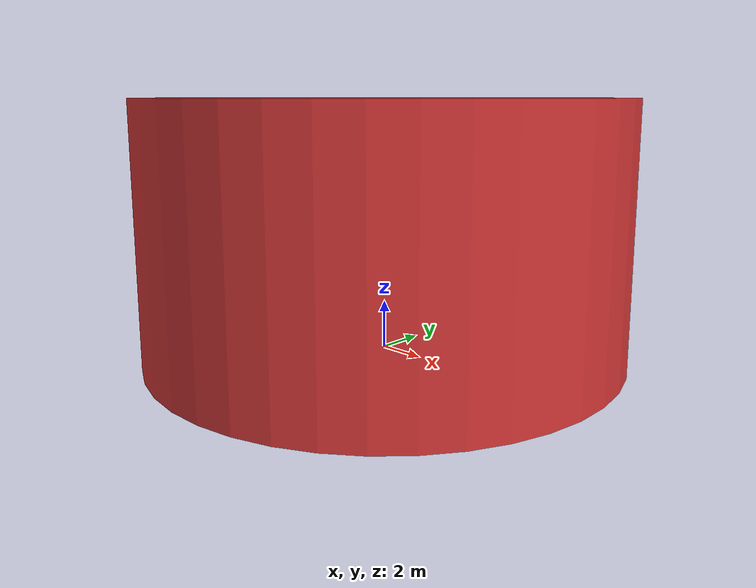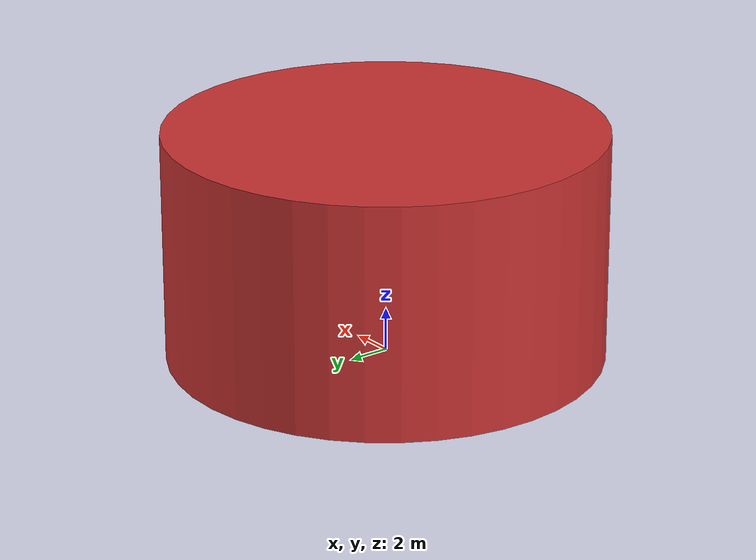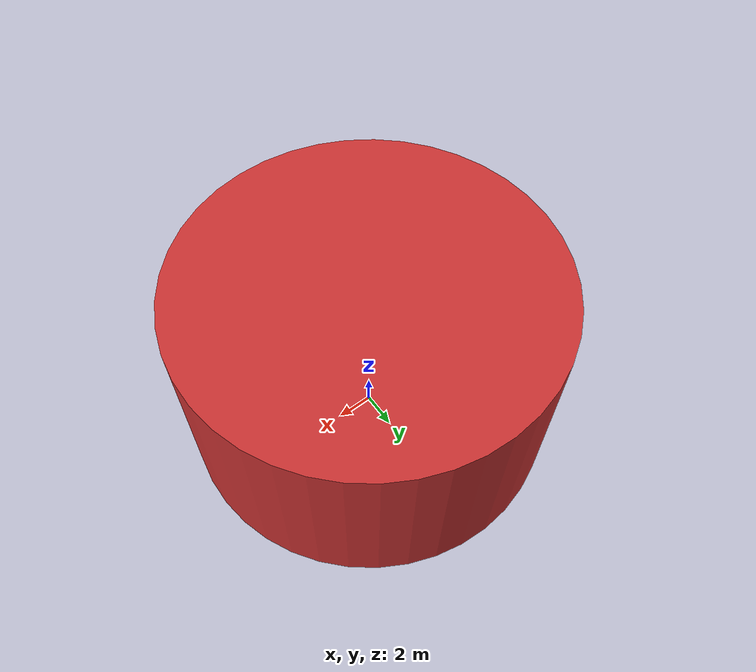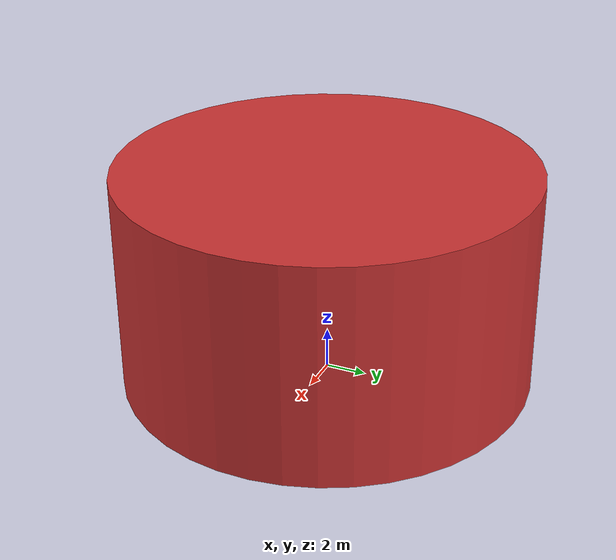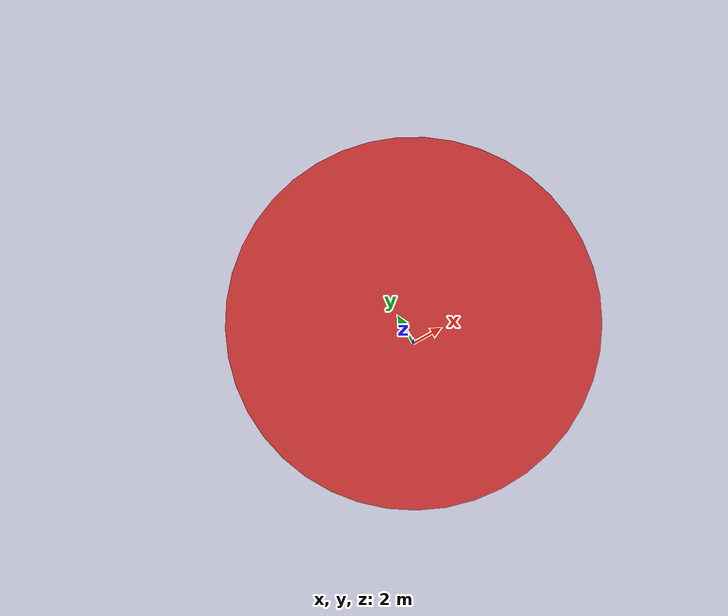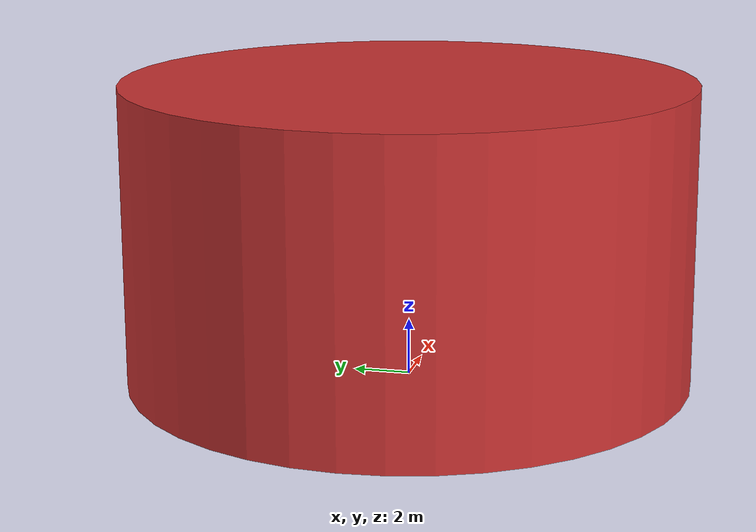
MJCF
<mujoco model="brazo_prueba">

  <compiler meshdir="modelos"/>

  <asset>
    <material name="rojo" rgba="0.8 0.2 0.2 1"/>
    <material name="azul" rgba="0.2 0.5 0.8 1"/>
    <mesh file="base.obj"/>
  </asset>

  <worldbody>
    <light name="spotlight" mode="targetbodycom" target="base_brazo" pos="0 -1 2"/>

    <body name="base_brazo" pos="0 0 0">
      <inertial mass="1.0" pos="0 0 0" diaginertia="0.1 0.1 0.1"/>
      <joint type="hinge" name="base_joint" axis="0 0 1"/>
      <geom type="mesh" mesh="base" material="rojo"/>

      <body name="pieza_prueba" pos="0 0 0.2">
        <inertial mass="0.1" pos="0 0 0" diaginertia="0.01 0.01 0.01"/>
        <joint type="hinge" name="junta_prueba" axis="0 1 0"/> <geom type="sphere" size="0.05" material="azul"/> </body>
    </body>
  </worldbody>

  <actuator>
    <position joint="base_joint" kp="10"/>
    <position joint="junta_prueba" kp="10"/>
  </actuator>

</mujoco>
